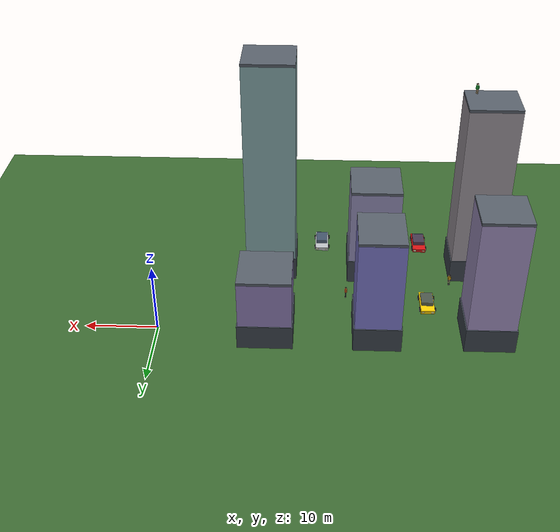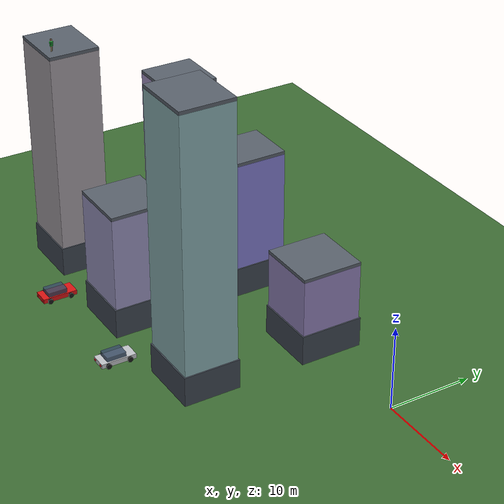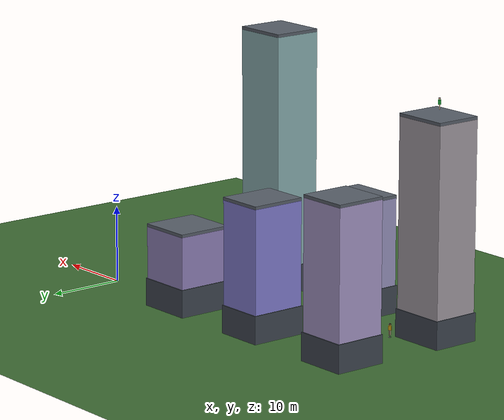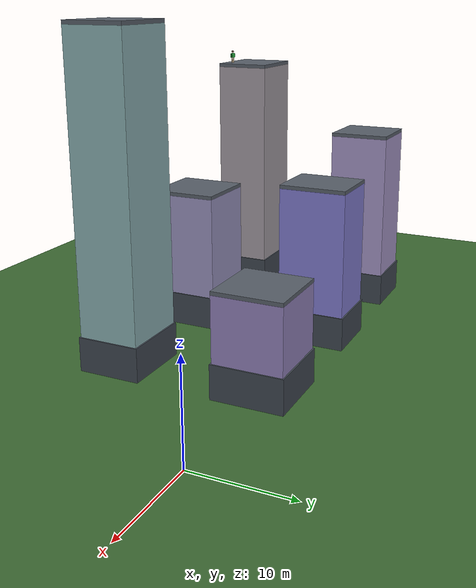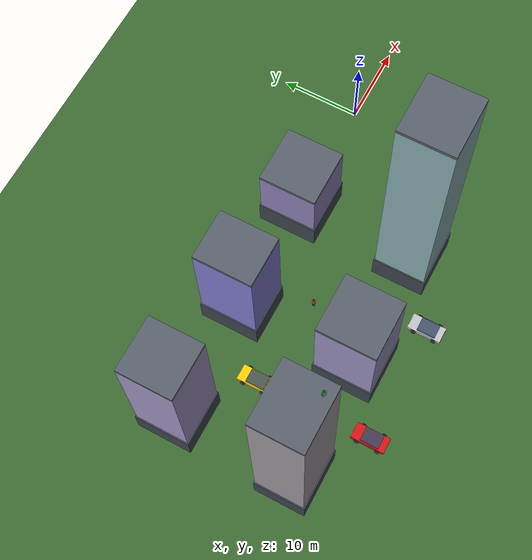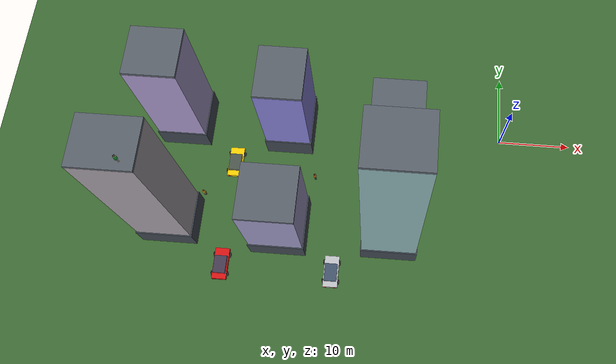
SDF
<sdf version="1.7">
 <world name="city_world">
  <model name="ground_plane">
   <static>true</static>
   <link name="link">
    <collision name="collision">
     <geometry><plane><normal>0 0 1</normal><size>300 300</size></plane></geometry>
     <surface><friction><ode><mu>100</mu><mu2>50</mu2></ode></friction></surface>
    </collision>
    <visual name="visual">
     <geometry><plane><normal>0 0 1</normal><size>300 300</size></plane></geometry>
     <material><ambient>0.24 0.42 0.20 1</ambient><diffuse>0.24 0.42 0.20 1</diffuse></material>
    </visual>
   </link>
  </model>
  <model name="car_0">
   <pose>-37.5 -20.8 0.01 0 0 1.5708</pose>
   <static>true</static>
   <link name="link">
    <visual name="body">
     <pose>0 0 0.45 0 0 0</pose>
     <geometry><box><size>4.2 1.95 0.55</size></box></geometry>
     <material>
      <ambient>0.85 0.08 0.08 1</ambient>
      <diffuse>0.85 0.08 0.08 1</diffuse>
      <specular>0.5 0.5 0.5 1</specular>
     </material>
    </visual>
    <visual name="cabin">
     <pose>-0.2 0 0.95 0 0 0</pose>
     <geometry><box><size>2.3 1.65 0.65</size></box></geometry>
     <material>
      <ambient>0.22 0.30 0.40 0.85</ambient>
      <diffuse>0.22 0.30 0.40 0.85</diffuse>
      <specular>0.7 0.7 0.7 1</specular>
     </material>
    </visual>
    <visual name="hl_l">
     <pose>2.1 0.65 0.45 0 0 0</pose>
     <geometry><box><size>0.08 0.35 0.18</size></box></geometry>
     <material><ambient>1 1 0.8 1</ambient><diffuse>1 1 0.8 1</diffuse><emissive>1 1 0.8 1</emissive></material>
    </visual>
    <visual name="hl_r">
     <pose>2.1 -0.65 0.45 0 0 0</pose>
     <geometry><box><size>0.08 0.35 0.18</size></box></geometry>
     <material><ambient>1 1 0.8 1</ambient><diffuse>1 1 0.8 1</diffuse><emissive>1 1 0.8 1</emissive></material>
    </visual>
    <visual name="tl_l">
     <pose>-2.1 0.65 0.45 0 0 0</pose>
     <geometry><box><size>0.08 0.35 0.18</size></box></geometry>
     <material>
      <ambient>1 0.1 0.1 1</ambient>
      <diffuse>1 0.1 0.1 1</diffuse>
      <emissive>0.8 0 0 1</emissive>
     </material>
    </visual>
    <visual name="tl_r">
     <pose>-2.1 -0.65 0.45 0 0 0</pose>
     <geometry><box><size>0.08 0.35 0.18</size></box></geometry>
     <material>
      <ambient>1 0.1 0.1 1</ambient>
      <diffuse>1 0.1 0.1 1</diffuse>
      <emissive>0.8 0 0 1</emissive>
     </material>
    </visual>
    <visual name="w_fl">
     <pose>1.3 1.05 0.32 1.5708 0 0</pose>
     <geometry><cylinder><radius>0.32</radius><length>0.22</length></cylinder></geometry>
     <material><ambient>0.1 0.1 0.1 1</ambient><diffuse>0.1 0.1 0.1 1</diffuse></material>
    </visual>
    <visual name="w_fr">
     <pose>1.3 -1.05 0.32 1.5708 0 0</pose>
     <geometry><cylinder><radius>0.32</radius><length>0.22</length></cylinder></geometry>
     <material><ambient>0.1 0.1 0.1 1</ambient><diffuse>0.1 0.1 0.1 1</diffuse></material>
    </visual>
    <visual name="w_bl">
     <pose>-1.3 1.05 0.32 1.5708 0 0</pose>
     <geometry><cylinder><radius>0.32</radius><length>0.22</length></cylinder></geometry>
     <material><ambient>0.1 0.1 0.1 1</ambient><diffuse>0.1 0.1 0.1 1</diffuse></material>
    </visual>
    <visual name="w_br">
     <pose>-1.3 -1.05 0.32 1.5708 0 0</pose>
     <geometry><cylinder><radius>0.32</radius><length>0.22</length></cylinder></geometry>
     <material><ambient>0.1 0.1 0.1 1</ambient><diffuse>0.1 0.1 0.1 1</diffuse></material>
    </visual>
   </link>
  </model>
  <model name="car_1">
   <pose>-37.5 -6.0 0.01 0 0 1.5708</pose>
   <static>true</static>
   <link name="link">
    <visual name="body">
     <pose>0 0 0.45 0 0 0</pose>
     <geometry><box><size>4.2 1.95 0.55</size></box></geometry>
     <material>
      <ambient>1.00 0.82 0.00 1</ambient>
      <diffuse>1.00 0.82 0.00 1</diffuse>
      <specular>0.5 0.5 0.5 1</specular>
     </material>
    </visual>
    <visual name="cabin">
     <pose>-0.2 0 0.95 0 0 0</pose>
     <geometry><box><size>2.3 1.65 0.65</size></box></geometry>
     <material>
      <ambient>0.22 0.30 0.40 0.85</ambient>
      <diffuse>0.22 0.30 0.40 0.85</diffuse>
      <specular>0.7 0.7 0.7 1</specular>
     </material>
    </visual>
    <visual name="hl_l">
     <pose>2.1 0.65 0.45 0 0 0</pose>
     <geometry><box><size>0.08 0.35 0.18</size></box></geometry>
     <material><ambient>1 1 0.8 1</ambient><diffuse>1 1 0.8 1</diffuse><emissive>1 1 0.8 1</emissive></material>
    </visual>
    <visual name="hl_r">
     <pose>2.1 -0.65 0.45 0 0 0</pose>
     <geometry><box><size>0.08 0.35 0.18</size></box></geometry>
     <material><ambient>1 1 0.8 1</ambient><diffuse>1 1 0.8 1</diffuse><emissive>1 1 0.8 1</emissive></material>
    </visual>
    <visual name="tl_l">
     <pose>-2.1 0.65 0.45 0 0 0</pose>
     <geometry><box><size>0.08 0.35 0.18</size></box></geometry>
     <material>
      <ambient>1 0.1 0.1 1</ambient>
      <diffuse>1 0.1 0.1 1</diffuse>
      <emissive>0.8 0 0 1</emissive>
     </material>
    </visual>
    <visual name="tl_r">
     <pose>-2.1 -0.65 0.45 0 0 0</pose>
     <geometry><box><size>0.08 0.35 0.18</size></box></geometry>
     <material>
      <ambient>1 0.1 0.1 1</ambient>
      <diffuse>1 0.1 0.1 1</diffuse>
      <emissive>0.8 0 0 1</emissive>
     </material>
    </visual>
    <visual name="w_fl">
     <pose>1.3 1.05 0.32 1.5708 0 0</pose>
     <geometry><cylinder><radius>0.32</radius><length>0.22</length></cylinder></geometry>
     <material><ambient>0.1 0.1 0.1 1</ambient><diffuse>0.1 0.1 0.1 1</diffuse></material>
    </visual>
    <visual name="w_fr">
     <pose>1.3 -1.05 0.32 1.5708 0 0</pose>
     <geometry><cylinder><radius>0.32</radius><length>0.22</length></cylinder></geometry>
     <material><ambient>0.1 0.1 0.1 1</ambient><diffuse>0.1 0.1 0.1 1</diffuse></material>
    </visual>
    <visual name="w_bl">
     <pose>-1.3 1.05 0.32 1.5708 0 0</pose>
     <geometry><cylinder><radius>0.32</radius><length>0.22</length></cylinder></geometry>
     <material><ambient>0.1 0.1 0.1 1</ambient><diffuse>0.1 0.1 0.1 1</diffuse></material>
    </visual>
    <visual name="w_br">
     <pose>-1.3 -1.05 0.32 1.5708 0 0</pose>
     <geometry><cylinder><radius>0.32</radius><length>0.22</length></cylinder></geometry>
     <material><ambient>0.1 0.1 0.1 1</ambient><diffuse>0.1 0.1 0.1 1</diffuse></material>
    </visual>
   </link>
  </model>
  <model name="car_4">
   <pose>-22.5 -20.8 0.01 0 0 1.5708</pose>
   <static>true</static>
   <link name="link">
    <visual name="body">
     <pose>0 0 0.45 0 0 0</pose>
     <geometry><box><size>4.2 1.95 0.55</size></box></geometry>
     <material>
      <ambient>0.75 0.76 0.78 1</ambient>
      <diffuse>0.75 0.76 0.78 1</diffuse>
      <specular>0.5 0.5 0.5 1</specular>
     </material>
    </visual>
    <visual name="cabin">
     <pose>-0.2 0 0.95 0 0 0</pose>
     <geometry><box><size>2.3 1.65 0.65</size></box></geometry>
     <material>
      <ambient>0.22 0.30 0.40 0.85</ambient>
      <diffuse>0.22 0.30 0.40 0.85</diffuse>
      <specular>0.7 0.7 0.7 1</specular>
     </material>
    </visual>
    <visual name="hl_l">
     <pose>2.1 0.65 0.45 0 0 0</pose>
     <geometry><box><size>0.08 0.35 0.18</size></box></geometry>
     <material><ambient>1 1 0.8 1</ambient><diffuse>1 1 0.8 1</diffuse><emissive>1 1 0.8 1</emissive></material>
    </visual>
    <visual name="hl_r">
     <pose>2.1 -0.65 0.45 0 0 0</pose>
     <geometry><box><size>0.08 0.35 0.18</size></box></geometry>
     <material><ambient>1 1 0.8 1</ambient><diffuse>1 1 0.8 1</diffuse><emissive>1 1 0.8 1</emissive></material>
    </visual>
    <visual name="tl_l">
     <pose>-2.1 0.65 0.45 0 0 0</pose>
     <geometry><box><size>0.08 0.35 0.18</size></box></geometry>
     <material>
      <ambient>1 0.1 0.1 1</ambient>
      <diffuse>1 0.1 0.1 1</diffuse>
      <emissive>0.8 0 0 1</emissive>
     </material>
    </visual>
    <visual name="tl_r">
     <pose>-2.1 -0.65 0.45 0 0 0</pose>
     <geometry><box><size>0.08 0.35 0.18</size></box></geometry>
     <material>
      <ambient>1 0.1 0.1 1</ambient>
      <diffuse>1 0.1 0.1 1</diffuse>
      <emissive>0.8 0 0 1</emissive>
     </material>
    </visual>
    <visual name="w_fl">
     <pose>1.3 1.05 0.32 1.5708 0 0</pose>
     <geometry><cylinder><radius>0.32</radius><length>0.22</length></cylinder></geometry>
     <material><ambient>0.1 0.1 0.1 1</ambient><diffuse>0.1 0.1 0.1 1</diffuse></material>
    </visual>
    <visual name="w_fr">
     <pose>1.3 -1.05 0.32 1.5708 0 0</pose>
     <geometry><cylinder><radius>0.32</radius><length>0.22</length></cylinder></geometry>
     <material><ambient>0.1 0.1 0.1 1</ambient><diffuse>0.1 0.1 0.1 1</diffuse></material>
    </visual>
    <visual name="w_bl">
     <pose>-1.3 1.05 0.32 1.5708 0 0</pose>
     <geometry><cylinder><radius>0.32</radius><length>0.22</length></cylinder></geometry>
     <material><ambient>0.1 0.1 0.1 1</ambient><diffuse>0.1 0.1 0.1 1</diffuse></material>
    </visual>
    <visual name="w_br">
     <pose>-1.3 -1.05 0.32 1.5708 0 0</pose>
     <geometry><cylinder><radius>0.32</radius><length>0.22</length></cylinder></geometry>
     <material><ambient>0.1 0.1 0.1 1</ambient><diffuse>0.1 0.1 0.1 1</diffuse></material>
    </visual>
   </link>
  </model>
  <model name="pedestrian_7">
   <pose>-26.0 -7.5 0.02 0 0 0.0000</pose>
   <static>true</static>
   <link name="link">
    <visual name="head">
     <pose>0 0 1.62 0 0 0</pose>
     <geometry><sphere><radius>0.13</radius></sphere></geometry>
     <material><ambient>0.50 0.32 0.16 1</ambient><diffuse>0.50 0.32 0.16 1</diffuse></material>
    </visual>
    <visual name="cap">
     <pose>0 -0.02 1.70 0 0 0</pose>
     <geometry><box><size>0.24 0.22 0.10</size></box></geometry>
     <material><ambient>0.2 0.15 0.1 1</ambient><diffuse>0.2 0.15 0.1 1</diffuse></material>
    </visual>
    <visual name="torso">
     <pose>0 0 1.20 0 0 0</pose>
     <geometry><box><size>0.34 0.24 0.52</size></box></geometry>
     <material><ambient>0.92 0.42 0.15 1</ambient><diffuse>0.92 0.42 0.15 1</diffuse></material>
    </visual>
    <visual name="arm_l">
     <pose>0 0.20 1.18 0 0 0</pose>
     <geometry><box><size>0.10 0.10 0.48</size></box></geometry>
     <material><ambient>0.92 0.42 0.15 1</ambient><diffuse>0.92 0.42 0.15 1</diffuse></material>
    </visual>
    <visual name="arm_r">
     <pose>0 -0.20 1.18 0 0 0</pose>
     <geometry><box><size>0.10 0.10 0.48</size></box></geometry>
     <material><ambient>0.92 0.42 0.15 1</ambient><diffuse>0.92 0.42 0.15 1</diffuse></material>
    </visual>
    <visual name="leg_l">
     <pose>0 0.09 0.60 0 0 0</pose>
     <geometry><box><size>0.13 0.13 0.62</size></box></geometry>
     <material><ambient>0.18 0.18 0.22 1</ambient><diffuse>0.18 0.18 0.22 1</diffuse></material>
    </visual>
    <visual name="leg_r">
     <pose>0 -0.09 0.60 0 0 0</pose>
     <geometry><box><size>0.13 0.13 0.62</size></box></geometry>
     <material><ambient>0.18 0.18 0.22 1</ambient><diffuse>0.18 0.18 0.22 1</diffuse></material>
    </visual>
    <visual name="shoe_l">
     <pose>0.04 0.09 0.05 0 0 0</pose>
     <geometry><box><size>0.22 0.13 0.08</size></box></geometry>
     <material><ambient>0.1 0.1 0.1 1</ambient><diffuse>0.1 0.1 0.1 1</diffuse></material>
    </visual>
    <visual name="shoe_r">
     <pose>0.04 -0.09 0.05 0 0 0</pose>
     <geometry><box><size>0.22 0.13 0.08</size></box></geometry>
     <material><ambient>0.1 0.1 0.1 1</ambient><diffuse>0.1 0.1 0.1 1</diffuse></material>
    </visual>
   </link>
  </model>
  <model name="pedestrian_11">
   <pose>-41.2 -11.0 0.04 0 0 1.5708</pose>
   <static>true</static>
   <link name="link">
    <visual name="head">
     <pose>0 0 1.62 0 0 0</pose>
     <geometry><sphere><radius>0.13</radius></sphere></geometry>
     <material><ambient>0.50 0.32 0.16 1</ambient><diffuse>0.50 0.32 0.16 1</diffuse></material>
    </visual>
    <visual name="cap">
     <pose>0 -0.02 1.70 0 0 0</pose>
     <geometry><box><size>0.24 0.22 0.10</size></box></geometry>
     <material><ambient>0.2 0.15 0.1 1</ambient><diffuse>0.2 0.15 0.1 1</diffuse></material>
    </visual>
    <visual name="torso">
     <pose>0 0 1.20 0 0 0</pose>
     <geometry><box><size>0.34 0.24 0.52</size></box></geometry>
     <material><ambient>0.92 0.72 0.10 1</ambient><diffuse>0.92 0.72 0.10 1</diffuse></material>
    </visual>
    <visual name="arm_l">
     <pose>0 0.20 1.18 0 0 0</pose>
     <geometry><box><size>0.10 0.10 0.48</size></box></geometry>
     <material><ambient>0.92 0.72 0.10 1</ambient><diffuse>0.92 0.72 0.10 1</diffuse></material>
    </visual>
    <visual name="arm_r">
     <pose>0 -0.20 1.18 0 0 0</pose>
     <geometry><box><size>0.10 0.10 0.48</size></box></geometry>
     <material><ambient>0.92 0.72 0.10 1</ambient><diffuse>0.92 0.72 0.10 1</diffuse></material>
    </visual>
    <visual name="leg_l">
     <pose>0 0.09 0.60 0 0 0</pose>
     <geometry><box><size>0.13 0.13 0.62</size></box></geometry>
     <material><ambient>0.72 0.65 0.52 1</ambient><diffuse>0.72 0.65 0.52 1</diffuse></material>
    </visual>
    <visual name="leg_r">
     <pose>0 -0.09 0.60 0 0 0</pose>
     <geometry><box><size>0.13 0.13 0.62</size></box></geometry>
     <material><ambient>0.72 0.65 0.52 1</ambient><diffuse>0.72 0.65 0.52 1</diffuse></material>
    </visual>
    <visual name="shoe_l">
     <pose>0.04 0.09 0.05 0 0 0</pose>
     <geometry><box><size>0.22 0.13 0.08</size></box></geometry>
     <material><ambient>0.1 0.1 0.1 1</ambient><diffuse>0.1 0.1 0.1 1</diffuse></material>
    </visual>
    <visual name="shoe_r">
     <pose>0.04 -0.09 0.05 0 0 0</pose>
     <geometry><box><size>0.22 0.13 0.08</size></box></geometry>
     <material><ambient>0.1 0.1 0.1 1</ambient><diffuse>0.1 0.1 0.1 1</diffuse></material>
    </visual>
   </link>
  </model>
  <model name="pedestrian_26">
   <pose>-43.0 -17.0 27.78 0 0 0.7854</pose>
   <static>true</static>
   <link name="link">
    <visual name="head">
     <pose>0 0 1.62 0 0 0</pose>
     <geometry><sphere><radius>0.13</radius></sphere></geometry>
     <material><ambient>0.94 0.80 0.68 1</ambient><diffuse>0.94 0.80 0.68 1</diffuse></material>
    </visual>
    <visual name="cap">
     <pose>0 -0.02 1.70 0 0 0</pose>
     <geometry><box><size>0.24 0.22 0.10</size></box></geometry>
     <material><ambient>0.2 0.15 0.1 1</ambient><diffuse>0.2 0.15 0.1 1</diffuse></material>
    </visual>
    <visual name="torso">
     <pose>0 0 1.20 0 0 0</pose>
     <geometry><box><size>0.34 0.24 0.52</size></box></geometry>
     <material><ambient>0.15 0.68 0.25 1</ambient><diffuse>0.15 0.68 0.25 1</diffuse></material>
    </visual>
    <visual name="arm_l">
     <pose>0 0.20 1.18 0 0 0</pose>
     <geometry><box><size>0.10 0.10 0.48</size></box></geometry>
     <material><ambient>0.15 0.68 0.25 1</ambient><diffuse>0.15 0.68 0.25 1</diffuse></material>
    </visual>
    <visual name="arm_r">
     <pose>0 -0.20 1.18 0 0 0</pose>
     <geometry><box><size>0.10 0.10 0.48</size></box></geometry>
     <material><ambient>0.15 0.68 0.25 1</ambient><diffuse>0.15 0.68 0.25 1</diffuse></material>
    </visual>
    <visual name="leg_l">
     <pose>0 0.09 0.60 0 0 0</pose>
     <geometry><box><size>0.13 0.13 0.62</size></box></geometry>
     <material><ambient>0.72 0.65 0.52 1</ambient><diffuse>0.72 0.65 0.52 1</diffuse></material>
    </visual>
    <visual name="leg_r">
     <pose>0 -0.09 0.60 0 0 0</pose>
     <geometry><box><size>0.13 0.13 0.62</size></box></geometry>
     <material><ambient>0.72 0.65 0.52 1</ambient><diffuse>0.72 0.65 0.52 1</diffuse></material>
    </visual>
    <visual name="shoe_l">
     <pose>0.04 0.09 0.05 0 0 0</pose>
     <geometry><box><size>0.22 0.13 0.08</size></box></geometry>
     <material><ambient>0.1 0.1 0.1 1</ambient><diffuse>0.1 0.1 0.1 1</diffuse></material>
    </visual>
    <visual name="shoe_r">
     <pose>0.04 -0.09 0.05 0 0 0</pose>
     <geometry><box><size>0.22 0.13 0.08</size></box></geometry>
     <material><ambient>0.1 0.1 0.1 1</ambient><diffuse>0.1 0.1 0.1 1</diffuse></material>
    </visual>
   </link>
  </model>
  <model name="building_2">
   <pose>-45.0 -15.0 13.838985258138631 0 0 0</pose>
   <static>true</static>
   <link name="link">
    <collision name="collision"><geometry><box><size>7.20 6.04 27.68</size></box></geometry></collision>
    <visual name="tower">
     <geometry><box><size>7.20 6.04 27.68</size></box></geometry>
     <material>
      <ambient>0.65 0.62 0.65 1</ambient>
      <diffuse>0.65 0.62 0.65 1</diffuse>
      <specular>0.3 0.3 0.3 1</specular>
     </material>
    </visual>
    <visual name="lobby">
     <pose>0 0 -12.04 0 0 0</pose>
     <geometry><box><size>7.50 6.34 3.6</size></box></geometry>
     <material><ambient>0.25 0.28 0.32 1</ambient><diffuse>0.25 0.28 0.32 1</diffuse></material>
    </visual>
    <visual name="parapet">
     <pose>0 0 14.04 0 0 0</pose>
     <geometry><box><size>7.20 6.04 0.4</size></box></geometry>
     <material><ambient>0.35 0.38 0.42 1</ambient><diffuse>0.35 0.38 0.42 1</diffuse></material>
    </visual>
   </link>
  </model>
  <model name="building_3">
   <pose>-45.0 0.0 10.048918176689401 0 0 0</pose>
   <static>true</static>
   <link name="link">
    <collision name="collision"><geometry><box><size>6.56 6.58 20.10</size></box></geometry></collision>
    <visual name="tower">
     <geometry><box><size>6.56 6.58 20.10</size></box></geometry>
     <material>
      <ambient>0.66 0.60 0.79 1</ambient>
      <diffuse>0.66 0.60 0.79 1</diffuse>
      <specular>0.3 0.3 0.3 1</specular>
     </material>
    </visual>
    <visual name="lobby">
     <pose>0 0 -8.25 0 0 0</pose>
     <geometry><box><size>6.86 6.88 3.6</size></box></geometry>
     <material><ambient>0.25 0.28 0.32 1</ambient><diffuse>0.25 0.28 0.32 1</diffuse></material>
    </visual>
    <visual name="parapet">
     <pose>0 0 10.25 0 0 0</pose>
     <geometry><box><size>6.56 6.58 0.4</size></box></geometry>
     <material><ambient>0.35 0.38 0.42 1</ambient><diffuse>0.35 0.38 0.42 1</diffuse></material>
    </visual>
   </link>
  </model>
  <model name="building_7">
   <pose>-30.0 -15.0 7.4510374064289255 0 0 0</pose>
   <static>true</static>
   <link name="link">
    <collision name="collision"><geometry><box><size>7.20 7.20 14.90</size></box></geometry></collision>
    <visual name="tower">
     <geometry><box><size>7.20 7.20 14.90</size></box></geometry>
     <material>
      <ambient>0.61 0.59 0.76 1</ambient>
      <diffuse>0.61 0.59 0.76 1</diffuse>
      <specular>0.3 0.3 0.3 1</specular>
     </material>
    </visual>
    <visual name="lobby">
     <pose>0 0 -5.65 0 0 0</pose>
     <geometry><box><size>7.50 7.50 3.6</size></box></geometry>
     <material><ambient>0.25 0.28 0.32 1</ambient><diffuse>0.25 0.28 0.32 1</diffuse></material>
    </visual>
    <visual name="parapet">
     <pose>0 0 7.65 0 0 0</pose>
     <geometry><box><size>7.20 7.20 0.4</size></box></geometry>
     <material><ambient>0.35 0.38 0.42 1</ambient><diffuse>0.35 0.38 0.42 1</diffuse></material>
    </visual>
   </link>
  </model>
  <model name="building_8">
   <pose>-30.0 0.0 8.435721079461565 0 0 0</pose>
   <static>true</static>
   <link name="link">
    <collision name="collision"><geometry><box><size>6.19 7.20 16.87</size></box></geometry></collision>
    <visual name="tower">
     <geometry><box><size>6.19 7.20 16.87</size></box></geometry>
     <material>
      <ambient>0.52 0.50 0.83 1</ambient>
      <diffuse>0.52 0.50 0.83 1</diffuse>
      <specular>0.3 0.3 0.3 1</specular>
     </material>
    </visual>
    <visual name="lobby">
     <pose>0 0 -6.64 0 0 0</pose>
     <geometry><box><size>6.49 7.50 3.6</size></box></geometry>
     <material><ambient>0.25 0.28 0.32 1</ambient><diffuse>0.25 0.28 0.32 1</diffuse></material>
    </visual>
    <visual name="parapet">
     <pose>0 0 8.64 0 0 0</pose>
     <geometry><box><size>6.19 7.20 0.4</size></box></geometry>
     <material><ambient>0.35 0.38 0.42 1</ambient><diffuse>0.35 0.38 0.42 1</diffuse></material>
    </visual>
   </link>
  </model>
  <model name="building_11">
   <pose>-15.0 -15.0 16.881190465444462 0 0 0</pose>
   <static>true</static>
   <link name="link">
    <collision name="collision"><geometry><box><size>7.20 6.38 33.76</size></box></geometry></collision>
    <visual name="tower">
     <geometry><box><size>7.20 6.38 33.76</size></box></geometry>
     <material>
      <ambient>0.55 0.70 0.71 1</ambient>
      <diffuse>0.55 0.70 0.71 1</diffuse>
      <specular>0.3 0.3 0.3 1</specular>
     </material>
    </visual>
    <visual name="lobby">
     <pose>0 0 -15.08 0 0 0</pose>
     <geometry><box><size>7.50 6.68 3.6</size></box></geometry>
     <material><ambient>0.25 0.28 0.32 1</ambient><diffuse>0.25 0.28 0.32 1</diffuse></material>
    </visual>
    <visual name="parapet">
     <pose>0 0 17.08 0 0 0</pose>
     <geometry><box><size>7.20 6.38 0.4</size></box></geometry>
     <material><ambient>0.35 0.38 0.42 1</ambient><diffuse>0.35 0.38 0.42 1</diffuse></material>
    </visual>
   </link>
  </model>
  <model name="building_12">
   <pose>-15.0 0.0 5.172215329142294 0 0 0</pose>
   <static>true</static>
   <link name="link">
    <collision name="collision"><geometry><box><size>7.20 7.20 10.34</size></box></geometry></collision>
    <visual name="tower">
     <geometry><box><size>7.20 7.20 10.34</size></box></geometry>
     <material>
      <ambient>0.58 0.52 0.74 1</ambient>
      <diffuse>0.58 0.52 0.74 1</diffuse>
      <specular>0.3 0.3 0.3 1</specular>
     </material>
    </visual>
    <visual name="lobby">
     <pose>0 0 -3.37 0 0 0</pose>
     <geometry><box><size>7.50 7.50 3.6</size></box></geometry>
     <material><ambient>0.25 0.28 0.32 1</ambient><diffuse>0.25 0.28 0.32 1</diffuse></material>
    </visual>
    <visual name="parapet">
     <pose>0 0 5.37 0 0 0</pose>
     <geometry><box><size>7.20 7.20 0.4</size></box></geometry>
     <material><ambient>0.35 0.38 0.42 1</ambient><diffuse>0.35 0.38 0.42 1</diffuse></material>
    </visual>
   </link>
  </model>
  <model name="helipad_1">
   <pose>-45.0 -15.0 27.778 0 0 0</pose>
   <static>true</static>
   <link name="link">
    <visual name="pad">
     <geometry><cylinder><radius>2.5</radius><length>0.15</length></cylinder></geometry>
     <material><ambient>1.0 0.82 0.0 1</ambient><diffuse>1.0 0.82 0.0 1</diffuse></material>
    </visual>
    <visual name="ring">
     <pose>0 0 0.02 0 0 0</pose>
     <geometry><cylinder><radius>2.3</radius><length>0.12</length></cylinder></geometry>
     <material><ambient>0.2 0.2 0.2 1</ambient><diffuse>0.2 0.2 0.2 1</diffuse></material>
    </visual>
    <visual name="inner_pad">
     <pose>0 0 0.04 0 0 0</pose>
     <geometry><cylinder><radius>2.0</radius><length>0.10</length></cylinder></geometry>
     <material><ambient>1.0 0.82 0.0 1</ambient><diffuse>1.0 0.82 0.0 1</diffuse></material>
    </visual>
    <visual name="h_bar1">
     <pose>-0.75 0 0.10 0 0 0</pose>
     <geometry><box><size>0.35 1.8 0.02</size></box></geometry>
     <material><ambient>1 1 1 1</ambient><diffuse>1 1 1 1</diffuse></material>
    </visual>
    <visual name="h_bar2">
     <pose>0.75 0 0.10 0 0 0</pose>
     <geometry><box><size>0.35 1.8 0.02</size></box></geometry>
     <material><ambient>1 1 1 1</ambient><diffuse>1 1 1 1</diffuse></material>
    </visual>
    <visual name="h_cross">
     <pose>0 0 0.10 0 0 0</pose>
     <geometry><box><size>1.5 0.35 0.02</size></box></geometry>
     <material><ambient>1 1 1 1</ambient><diffuse>1 1 1 1</diffuse></material>
    </visual>
   </link>
  </model>
 </world>
</sdf>
